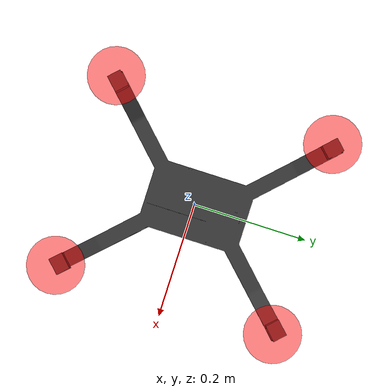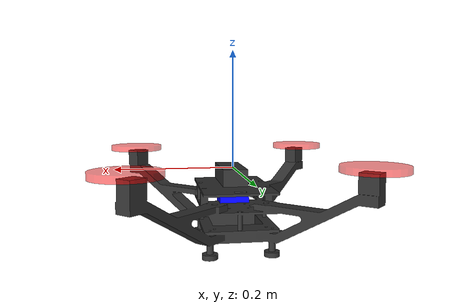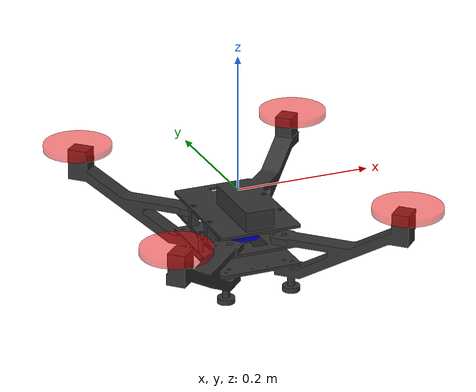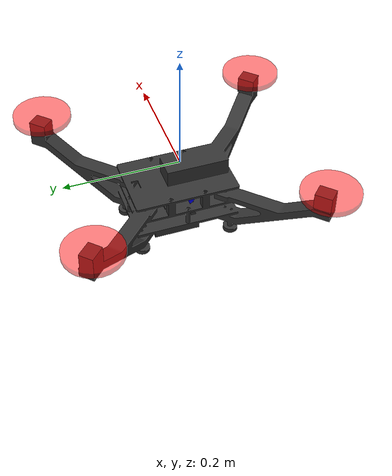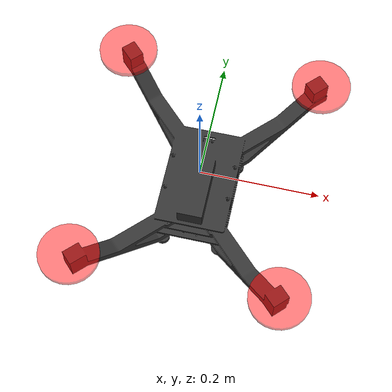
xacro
<?xml version="1.0"?>
<robot name="quadcopter" xmlns:xacro="http://www.ros.org/wiki/xacro">

  <!-- 1. ROOT LINK -->
  <link name="base_link">
    <inertial>
      <mass value="0.001"/>
      <origin xyz="0 0 0" rpy="0 0 0"/>
      <inertia ixx="0.000001" ixy="0" ixz="0"
               iyy="0.000001" iyz="0"
               izz="0.000001"/>
    </inertial>
  </link>

  <!-- 2. BASE TO CHASSIS JOINT -->
  <joint name="base_to_chassis" type="fixed">
    <parent link="base_link"/>
    <child link="chassis"/>
    <origin xyz="0 0 0" rpy="0 0 0"/>
  </joint>

  <!-- 3. CHASSIS LINK -->
  <link name="chassis">
    <visual>
      <origin xyz="-0.0211 -0.0795 0" rpy="0 0 0"/>
      <geometry>
        <mesh filename="file:///home/ubuntu/drone_ws/src/cpp_pubsub/meshes/chassis.stl" scale="0.001 0.001 0.001"/>
      </geometry>
      <material name="dark_grey">
        <color rgba="0.2 0.2 0.2 1.0"/>
      </material>
    </visual>

    <collision>
      <origin xyz="-0.0211 -0.0795 0" rpy="0 0 0"/>
      <geometry>
        <mesh filename="file:///home/ubuntu/drone_ws/src/cpp_pubsub/meshes/chassis.stl" scale="0.001 0.001 0.001"/>
      </geometry>
    </collision>

    <inertial>
      <mass value="1.25666"/>
      <origin xyz="0.0 0.0 -0.050" rpy="0 0 0"/>
      <inertia ixx="0.020238946" ixy="-0.000042264" ixz="0.000005567"
               iyy="0.013726957" iyz="-0.000238167"
               izz="0.030648414"/>
    </inertial>
  </link>

  <gazebo reference="chassis">
    <material>Gazebo/DarkGrey</material>
  </gazebo>

  <!-- 4. CHASSIS TO SONAR JOINT -->
  <joint name="chassis_to_sonar" type="fixed">
    <parent link="chassis"/>
    <child link="sonar_link"/>
    <origin xyz="0 0 -0.06" rpy="0 1.5708 0"/>
  </joint>

  <!-- 5. SONAR SENSOR LINK -->
  <link name="sonar_link">
    <visual>
      <geometry>
        <cylinder radius="0.02" length="0.05"/>
      </geometry>
      <material name="blue">
        <color rgba="0.0 0.0 1.0 1.0"/>
      </material>
    </visual>

    <inertial>
      <mass value="0.1"/>
      <origin xyz="0 0 0" rpy="0 0 0"/>
      <inertia ixx="0.0000308" ixy="0.0" ixz="0.0"
               iyy="0.0000308" iyz="0.0"
               izz="0.0000200"/>
    </inertial>
  </link>

  <gazebo reference="sonar_link">
    <material>Gazebo/Blue</material>
    <sensor type="ray" name="altitude_sonar">
      <pose>0 0 0 0 0 0</pose>
      <always_on>true</always_on>
      <visualize>false</visualize>
      <update_rate>50.0</update_rate>
      <ray>
        <scan>
          <horizontal>
            <samples>1</samples>
            <resolution>1</resolution>
            <min_angle>0</min_angle>
            <max_angle>0</max_angle>
          </horizontal>
        </scan>
        <range>
          <min>0.05</min>
          <max>8.0</max>
          <resolution>0.01</resolution>
        </range>
      </ray>
      <plugin name="gazebo_ros_sonar" filename="libgazebo_ros_ray_sensor.so">
        <ros>
          <remapping>~/out:=/sensor/sonar</remapping>
        </ros>
        <output_type>sensor_msgs/LaserScan</output_type>
        <frame_name>sonar_link</frame_name>
      </plugin>
    </sensor>
  </gazebo>

  <!-- 6. INDEPENDENT ROTOR MACRO -->
  <xacro:macro name="motor" params="name x y">
    <link name="${name}">
      <visual>
        <geometry><cylinder radius="0.05" length="0.01"/></geometry>
        <material name="red"><color rgba="1.0 0.0 0.0 0.5"/></material>
      </visual>
      <inertial>
        <mass value="0.01"/>
        <origin xyz="0 0 0" rpy="0 0 0"/>
        <inertia ixx="0.000001" ixy="0" ixz="0" iyy="0.000001" iyz="0" izz="0.000001"/>
      </inertial>
    </link>

    <joint name="chassis_to_${name}" type="continuous">
      <parent link="chassis"/>
      <child link="${name}"/>
      <origin xyz="${x} ${y} 0.02" rpy="0 0 0"/>
      <axis xyz="0 0 1"/>
    </joint>

    <gazebo>
      <plugin name="gazebo_ros_force_${name}" filename="libgazebo_ros_force.so">
        <ros>
          <remapping>gazebo_ros_force:=/drone/motors/${name}</remapping>
        </ros>
        <link_name>${name}</link_name>
        <force_frame>link</force_frame>
      </plugin>
    </gazebo>
  </xacro:macro>

  <xacro:motor name="front_right" x="0.17" y="-0.194"/>
  <xacro:motor name="front_left" x="0.17" y="0.194"/>
  <xacro:motor name="back_right" x="-0.17" y="-0.194"/>
  <xacro:motor name="back_left" x="-0.17" y="0.194"/>

  <!-- 7. IMU SENSOR LINK -->
  <joint name="chassis_to_imu" type="fixed">
    <parent link="chassis"/>
    <child link="imu_link"/>
    <origin xyz="0 0 0" rpy="0 0 0"/>
  </joint>

  <link name="imu_link">
    <inertial>
      <mass value="0.001"/>
      <origin xyz="0 0 0" rpy="0 0 0"/>
      <inertia ixx="0.000001" ixy="0" ixz="0"
               iyy="0.000001" iyz="0"
               izz="0.000001"/>
    </inertial>
  </link>

  <gazebo reference="imu_link">
    <sensor name="drone_imu" type="imu">
      <always_on>true</always_on>
      <update_rate>250.0</update_rate>
      <visualize>false</visualize>
      <plugin name="gazebo_ros_imu_sensor" filename="libgazebo_ros_imu_sensor.so">
        <ros>
          <remapping>~/out:=/imu/data</remapping>
        </ros>
        <initial_orientation_as_reference>false</initial_orientation_as_reference>
        <frame_name>imu_link</frame_name>
      </plugin>
      <imu>
        <angular_velocity>
          <x><noise type="gaussian"><mean>0.0</mean><stddev>0.0002</stddev></noise></x>
          <y><noise type="gaussian"><mean>0.0</mean><stddev>0.0002</stddev></noise></y>
          <z><noise type="gaussian"><mean>0.0</mean><stddev>0.0002</stddev></noise></z>
        </angular_velocity>
        <linear_acceleration>
          <x><noise type="gaussian"><mean>0.0</mean><stddev>0.01</stddev></noise></x>
          <y><noise type="gaussian"><mean>0.0</mean><stddev>0.01</stddev></noise></y>
          <z><noise type="gaussian"><mean>0.0</mean><stddev>0.01</stddev></noise></z>
        </linear_acceleration>
      </imu>
    </sensor>
  </gazebo>

  <gazebo>
    <allow_auto_disable>false</allow_auto_disable>
  </gazebo>

  <!-- 8. CAMERA SENSOR LINK -->
  <link name="camera_link"/>
  <joint name="camera_joint" type="fixed">
      <parent link="chassis"/>
      <child link="camera_link"/>
      <!-- Shifted 10cm forward along Green Y-axis, rotated 90 degrees -->
      <origin xyz="0.0 0.1 0.0" rpy="0 0 1.5708"/>
  </joint>

  <gazebo reference="camera_link">
      <sensor type="camera" name="front_camera">
          <update_rate>30.0</update_rate>
          <camera>
              <horizontal_fov>1.39626</horizontal_fov>
              <image><width>640</width><height>480</height><format>R8G8B8</format></image>
          </camera>
          <plugin name="camera_controller" filename="libgazebo_ros_camera.so">
              <alwaysOn>true</alwaysOn>
              <cameraName>drone_camera</cameraName>
              <imageTopicName>image_raw</imageTopicName>
              <cameraInfoTopicName>camera_info</cameraInfoTopicName>
              <frameName>camera_link</frameName>
          </plugin>
      </sensor>
  </gazebo>

</robot>
